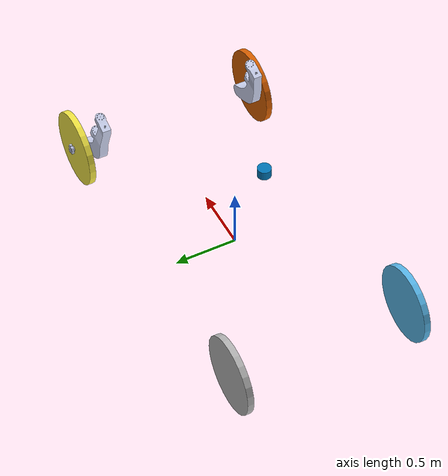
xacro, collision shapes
<?xml version="1.0"?>
<robot xmlns:xacro="http://www.ros.org/wiki/xacro" name="asc">
  <gazebo>
    <plugin name="gazebo_ros_control" filename="libgazebo_ros_control.so">
      <robotNamespace>/</robotNamespace>
      <robotSimType>gazebo_ros_control/DefaultRobotHWSim</robotSimType>
      <legacyModeNS>false</legacyModeNS>
    </plugin>
  </gazebo>
  <link name="base_link"/>
  <joint name="base_link_to_frame" type="fixed">
    <origin xyz="0 0 0.7" rpy="0 0 0"/>
    <parent link="base_link"/>
    <child link="frame_link"/>
  </joint>
  <link name="frame_link">
    <inertial>
      <origin xyz="-0.191135074026536 0.00147037627768998 -0.144166350352701" rpy="0 0 0"/>
      <mass value="54.6845003989778"/>
      <inertia ixx="0.830289508168532" ixy="-7.44170925374484E-07" ixz="-0.168031775231281" iyy="1.89493024064907" iyz="3.6787232173372E-07" izz="1.80540947379668"/>
    </inertial>
    <visual>
      <origin xyz="0 0 0" rpy="0 0 0"/>
      <geometry>
        <mesh filename="package://asc_description/meshes/base_link.STL"/>
      </geometry>
      <material name="">
        <color rgba="0.866666666666667 0.866666666666667 0.890196078431372 1"/>
      </material>
    </visual>
  </link>
  <link name="left_front_steering_link">
    <inertial>
      <origin xyz="-0.0439194980427094 -0.0123148656628935 -0.29574701698731" rpy="0 0 0"/>
      <mass value="5.71439015182903"/>
      <inertia ixx="0.138973038944984" ixy="0.00240438901312515" ixz="0.0320681563279578" iyy="0.160053837434921" iyz="-0.0109556260035955" izz="0.028546837728721"/>
    </inertial>
    <visual>
      <origin xyz="0 0 0" rpy="0 0 0"/>
      <geometry>
        <mesh filename="package://asc_description/meshes/left_front_steering_link.STL"/>
      </geometry>
      <material name="">
        <color rgba="0.792156862745098 0.819607843137255 0.933333333333333 1"/>
      </material>
    </visual>
    <collision>
      <origin xyz="0 0 0" rpy="0 0 0"/>
      <geometry>
        <mesh filename="package://asc_description/meshes/left_front_steering_link.STL"/>
      </geometry>
    </collision>
  </link>
  <joint name="left_front_steering_joint" type="revolute">
    <origin xyz="0.9825 0.63618 0.047063" rpy="0.13546 -0.28749 0.0037802"/>
    <parent link="frame_link"/>
    <child link="left_front_steering_link"/>
    <axis xyz="0 0 1"/>
    <limit lower="-0.8" upper="0.9" effort="100" velocity="100"/>
  </joint>
  <link name="left_front_wheel_link">
    <inertial>
      <origin xyz="-2.26485497023532E-14 4.10782519111308E-14 0.00509989314954018" rpy="0 0 0"/>
      <mass value="3.6905479088754"/>
      <inertia ixx="0.117114266308146" ixy="-6.93889390390723E-18" ixz="1.02756637900478E-17" iyy="0.117114266308146" iyz="-3.62378420062206E-17" izz="0.227951064044091"/>
    </inertial>
    <visual>
      <origin xyz="0 0 0" rpy="0 0 0"/>
      <geometry>
        <cylinder length="0.05" radius="0.3"/>
      </geometry>
    </visual>
    <collision>
      <origin xyz="0 0 0" rpy="0 0 0"/>
      <geometry>
        <cylinder length="0.05" radius="0.3"/>
      </geometry>
    </collision>
  </link>
  <joint name="left_front_wheel_joint" type="continuous">
    <origin xyz="0.065693 0.065054 -0.50813" rpy="-1.8471 1.0585 -0.24589"/>
    <parent link="left_front_steering_link"/>
    <child link="left_front_wheel_link"/>
    <axis xyz="0 0 1"/>
  </joint>
  <link name="right_front_steering_link">
    <inertial>
      <origin xyz="-0.0465182122250822 0.0145095544427134 -0.290619703564971" rpy="0 0 0"/>
      <mass value="5.57746367002881"/>
      <inertia ixx="0.138857493635095" ixy="-0.0022557465179349" ixz="0.032139397456901" iyy="0.160001336296301" iyz="0.0107272499121531" izz="0.0284811002523076"/>
    </inertial>
    <visual>
      <origin xyz="0 0 0" rpy="0 0 0"/>
      <geometry>
        <mesh filename="package://asc_description/meshes/right_front_steering_link.STL"/>
      </geometry>
      <material name="">
        <color rgba="0.792156862745098 0.819607843137255 0.933333333333333 1"/>
      </material>
    </visual>
    <collision>
      <origin xyz="0 0 0" rpy="0 0 0"/>
      <geometry>
        <mesh filename="package://asc_description/meshes/right_front_steering_link.STL"/>
      </geometry>
    </collision>
  </link>
  <joint name="right_front_steering_joint" type="revolute">
    <origin xyz="0.9825 -0.63318 0.047063" rpy="-0.13546 -0.28749 0.0037802"/>
    <parent link="frame_link"/>
    <child link="right_front_steering_link"/>
    <axis xyz="0 0 1"/>
    <limit lower="-0.8" upper="0.8" effort="100" velocity="100"/>
  </joint>
  <link name="right_front_wheel_link">
    <inertial>
      <origin xyz="-1.02140518265514E-14 6.85007606193722E-14 0.00509989314946457" rpy="0 0 0"/>
      <mass value="3.69054790887537"/>
      <inertia ixx="0.117114266308143" ixy="1.38777878078145E-17" ixz="2.37549730750149E-18" iyy="0.117114266308143" iyz="3.40770700491441E-17" izz="0.22795106404409"/>
    </inertial>
    <visual>
      <origin xyz="0 0 0" rpy="0 0 0"/>
      <geometry>
        <cylinder length="0.05" radius="0.3"/>
      </geometry>
    </visual>
    <collision>
      <origin xyz="0 0 0" rpy="0 0 0"/>
      <geometry>
        <cylinder length="0.05" radius="0.3"/>
      </geometry>
    </collision>
  </link>
  <joint name="right_front_wheel_joint" type="continuous">
    <origin xyz="0.065291 -0.059582 -0.50741" rpy="1.8455 1.0552 0.23683"/>
    <parent link="right_front_steering_link"/>
    <child link="right_front_wheel_link"/>
    <axis xyz="0 0 1"/>
  </joint>
  <!-- add fake rear steering joint-->
  <link name="left_rear_steer">
    <inertial>
      <origin xyz="0 0 0" rpy="0 0 0"/>
      <mass value="1"/>
      <inertia ixx="1.0" ixy="0.0" ixz="0.0" iyy="1.0" iyz="0.0" izz="1.0"/>
    </inertial>
  </link>
  <joint name="left_rear_steering_joint" type="revolute">
    <origin xyz="-1.3237 0.70906 -0.41261" rpy="0 0 0"/>
    <parent link="frame_link"/>
    <child link="left_rear_steer"/>
    <axis xyz="0 0 1"/>
    <limit lower="0" upper="0" effort="0" velocity="0"/>
  </joint>
  <link name="left_rear_wheel">
    <inertial>
      <origin xyz="8.43769498715119E-15 0.0589722640664191 -5.01820807130571E-14" rpy="0 0 0"/>
      <mass value="3.68939811577995"/>
      <inertia ixx="0.117113236563891" ixy="-4.42261767048626E-17" ixz="-6.93889390390723E-18" iyy="0.227950884881602" iyz="-3.11187820789416E-16" izz="0.117113236563891"/>
    </inertial>
    <visual>
      <origin xyz="0 0 0" rpy="1.57 0 0"/>
      <geometry>
        <cylinder length="0.05" radius="0.3"/>
      </geometry>
    </visual>
    <collision>
      <origin xyz="0 0 0" rpy="1.57 0 0"/>
      <geometry>
        <cylinder length="0.05" radius="0.3"/>
      </geometry>
    </collision>
  </link>
  <joint name="left_rear_wheel_joint" type="continuous">
    <origin xyz="0 0 0" rpy="0 0 0"/>
    <parent link="left_rear_steer"/>
    <child link="left_rear_wheel"/>
    <axis xyz="0 1 0"/>
  </joint>
  <!-- add fake rear steering joint-->
  <link name="right_rear_steer">
    <inertial>
      <origin xyz="0 0 0" rpy="0 0 0"/>
      <mass value="1"/>
      <inertia ixx="1.0" ixy="0.0" ixz="0.0" iyy="1.0" iyz="0.0" izz="1.0"/>
    </inertial>
  </link>
  <joint name="right_rear_steering_joint" type="revolute">
    <origin xyz="-1.3237 -0.70606 -0.41261" rpy="0 0 0"/>
    <parent link="frame_link"/>
    <child link="right_rear_steer"/>
    <axis xyz="0 0 1"/>
    <limit lower="0" upper="0" effort="0" velocity="0"/>
  </joint>
  <link name="right_rear_wheel">
    <inertial>
      <origin xyz="7.99360577730113E-15 0.0589722640664192 4.2410519540681E-14" rpy="0 0 0"/>
      <mass value="3.68939811577991"/>
      <inertia ixx="0.117113236563893" ixy="-4.66966016159301E-17" ixz="4.33680868994202E-18" iyy="0.2279508848816" iyz="3.34438350256477E-16" izz="0.117113236563893"/>
    </inertial>
    <visual>
      <origin xyz="0 0 0" rpy="1.57 0 0"/>
      <geometry>
        <cylinder length="0.05" radius="0.3"/>
      </geometry>
    </visual>
    <collision>
      <origin xyz="0 0 0" rpy="1.57 0 0"/>
      <geometry>
        <cylinder length="0.05" radius="0.3"/>
      </geometry>
    </collision>
  </link>
  <joint name="right_rear_wheel_joint" type="continuous">
    <origin xyz="0 0 0" rpy="0 0 0"/>
    <parent link="right_rear_steer"/>
    <child link="right_rear_wheel"/>
    <axis xyz="0 1 0"/>
  </joint>
  <transmission name="tran1">
    <type>transmission_interface/SimpleTransmission</type>
    <joint name="left_rear_wheel_joint">
      <hardwareInterface>hardware_interface/VelocityJointInterface</hardwareInterface>
    </joint>
    <actuator name="motor1">
      <hardwareInterface>hardware_interface/VelocityJointInterface</hardwareInterface>
      <mechanicalReduction>1</mechanicalReduction>
    </actuator>
  </transmission>
  <transmission name="tran2">
    <type>transmission_interface/SimpleTransmission</type>
    <joint name="right_rear_wheel_joint">
      <hardwareInterface>hardware_interface/VelocityJointInterface</hardwareInterface>
    </joint>
    <actuator name="motor2">
      <hardwareInterface>hardware_interface/VelocityJointInterface</hardwareInterface>
      <mechanicalReduction>1</mechanicalReduction>
    </actuator>
  </transmission>
  <!-- Transmissions for steering joints-->
  <transmission name="tran3">
    <type>transmission_interface/SimpleTransmission</type>
    <joint name="left_front_steering_joint">
      <hardwareInterface>hardware_interface/PositionJointInterface</hardwareInterface>
    </joint>
    <actuator name="motor3">
      <hardwareInterface>hardware_interface/PositionJointInterface</hardwareInterface>
      <mechanicalReduction>1</mechanicalReduction>
    </actuator>
  </transmission>
  <transmission name="tran4">
    <type>transmission_interface/SimpleTransmission</type>
    <joint name="right_front_steering_joint">
      <hardwareInterface>hardware_interface/PositionJointInterface</hardwareInterface>
    </joint>
    <actuator name="motor4">
      <hardwareInterface>hardware_interface/PositionJointInterface</hardwareInterface>
      <mechanicalReduction>1</mechanicalReduction>
    </actuator>
  </transmission>
  <!-- Transmissions for fake steering joints-->
  <transmission name="tran5">
    <type>transmission_interface/SimpleTransmission</type>
    <joint name="left_rear_steering_joint">
      <hardwareInterface>hardware_interface/PositionJointInterface</hardwareInterface>
    </joint>
    <actuator name="motor5">
      <hardwareInterface>hardware_interface/PositionJointInterface</hardwareInterface>
      <mechanicalReduction>1</mechanicalReduction>
    </actuator>
  </transmission>
  <transmission name="tran6">
    <type>transmission_interface/SimpleTransmission</type>
    <joint name="right_rear_steering_joint">
      <hardwareInterface>hardware_interface/PositionJointInterface</hardwareInterface>
    </joint>
    <actuator name="motor6">
      <hardwareInterface>hardware_interface/PositionJointInterface</hardwareInterface>
      <mechanicalReduction>1</mechanicalReduction>
    </actuator>
  </transmission>
  <transmission name="tran7">
    <type>transmission_interface/SimpleTransmission</type>
    <joint name="left_front_wheel_joint">
      <hardwareInterface>hardware_interface/VelocityJointInterface</hardwareInterface>
    </joint>
    <actuator name="motor7">
      <hardwareInterface>hardware_interface/VelocityJointInterface</hardwareInterface>
      <mechanicalReduction>1</mechanicalReduction>
    </actuator>
  </transmission>
  <transmission name="tran8">
    <type>transmission_interface/SimpleTransmission</type>
    <joint name="right_front_wheel_joint">
      <hardwareInterface>hardware_interface/VelocityJointInterface</hardwareInterface>
    </joint>
    <actuator name="motor8">
      <hardwareInterface>hardware_interface/VelocityJointInterface</hardwareInterface>
      <mechanicalReduction>1</mechanicalReduction>
    </actuator>
  </transmission>
  <!-- Sensors -->
  <gazebo>
    <plugin name="imu_controller" filename="libhector_gazebo_ros_imu.so">
      <robotNamespace>/</robotNamespace>
      <updateRate>50.0</updateRate>
      <bodyName>base_link</bodyName>
      <topicName>imu/data</topicName>
      <accelDrift>0.005 0.005 0.005</accelDrift>
      <accelGaussianNoise>0.005 0.005 0.005</accelGaussianNoise>
      <rateDrift>0.005 0.005 0.005 </rateDrift>
      <rateGaussianNoise>0.005 0.005 0.005 </rateGaussianNoise>
      <headingDrift>0.005</headingDrift>
      <headingGaussianNoise>0.005</headingGaussianNoise>
    </plugin>
    <!-- for calculating perfect odometry -->
    <!-- add gps -->
    <plugin name="gps_controller" filename="libhector_gazebo_ros_gps.so">
      <robotNamespace>/</robotNamespace>
      <updateRate>40</updateRate>
      <bodyName>base_link</bodyName>
      <frameId>base_link</frameId>
      <topicName>navsat/fix</topicName>
      <velocityTopicName>navsat/vel</velocityTopicName>
      <drift>0.0001 0.0001 0.0001</drift>
    </plugin>
  </gazebo>

  <!-- add camera -->
  <gazebo reference="camera_link">
    <sensor type="depth" name="openni_camera_camera">
      <always_on>1</always_on>
      <visualize>true</visualize>
      <camera>
        <horizontal_fov>1.3962634</horizontal_fov>
        <image>
          <width>640</width>
          <height>480</height>
          <format>R8G8B8</format>
        </image>
        <clip>
          <near>0.1</near>
          <far>25.0</far>
        </clip>
      </camera>
      <plugin name="camera_plugin" filename="libgazebo_ros_openni_kinect.so">
        <baseline>0.2</baseline>
        <alwaysOn>true</alwaysOn>
        <updateRate>0.0</updateRate>
        <cameraName>camera_ir</cameraName>
        <imageTopicName>/zed/zed_node/rgb/image_rect_color</imageTopicName>
        <cameraInfoTopicName>/zed/zed_node/rgb/camera_info </cameraInfoTopicName>
        <depthImageTopicName>/zed/zed_node/depth/depth_registered</depthImageTopicName>
        <depthImageCameraInfoTopicName>/zed/zed_node/depth/image_raw/camera_info</depthImageCameraInfoTopicName>
        <pointCloudTopicName>/zed/zed_node/point_cloud/cloud_registered </pointCloudTopicName>
        <frameName>camera_link_pc</frameName>
        <pointCloudCutoff>0.4</pointCloudCutoff>
        <distortionK1>0</distortionK1>
        <distortionK2>0</distortionK2>
        <distortionK3>0</distortionK3>
        <distortionT1>0</distortionT1>
        <distortionT2>0</distortionT2>
        <CxPrime>0</CxPrime>
        <Cx>0</Cx>
        <Cy>0</Cy>
        <focalLength>0</focalLength>
        <hackBaseline>0</hackBaseline>
      </plugin>
    </sensor>
  </gazebo>
  <link name="camera_link"/>

  <joint name="base_to_camera" type="fixed">
    <origin xyz="1.2 0 0.6" rpy="0 0.1 0"/>
    <parent link="base_link"/>
    <child link="camera_link"/>
  </joint>
  <link name="camera_link_pc"/>
  <joint name="camera_to_pc" type="fixed">
    <origin xyz="0 0 0" rpy="-1.57 0 -1.57"/>
    <parent link="camera_link"/>
    <child link="camera_link_pc"/>
  </joint>
  <xacro:include filename="$(find velodyne_description)/urdf/VLP-16.urdf.xacro"/>
  <VLP-16 parent="base_link" name="velodyne" topic="/os1_cloud_node/points" hz="10" samples="440" gpu="false">
    <origin xyz="-0.45 0 1.15" rpy="0 0 0"/>
  </VLP-16>
</robot>

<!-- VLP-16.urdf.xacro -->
<robot xmlns:xacro="http://www.ros.org/wiki/xacro" name="VLP-16">
  <xacro:property name="M_PI" value="3.1415926535897931" />
  <xacro:macro name="VLP-16" params="*origin is_sim:=true parent:=base_link name:=velodyne tf_prefix:='' topic:=/velodyne_points organize_cloud:=false hz:=10 lasers:=16 samples:=1875 collision_range:=0.3 min_range:=0.0 max_range:=100.0 noise:=0.008 min_angle:=-${M_PI} max_angle:=${M_PI} gpu:=false">

    <joint name="${name}_base_mount_joint" type="fixed">
      <xacro:insert_block name="origin" />
      <parent link="${parent}"/>
      <child link="${name}_base_link"/>
    </joint>

    <link name="${name}_base_link">
      <inertial>
        <mass value="0.83"/>
        <origin xyz="0 0 0.03585"/>
        <inertia ixx="${(0.83 * (3.0*0.0516*0.0516 + 0.0717*0.0717)) / 12.0}" ixy="0" ixz="0"
          iyy="${(0.83 * (3.0*0.0516*0.0516 + 0.0717*0.0717)) / 12.0}" iyz="0"
          izz="${0.5 * 0.83 * (0.0516*0.0516)}"/>
      </inertial>
      <visual>
        <geometry>
          <mesh filename="package://velodyne_description/meshes/VLP16_base_1.dae" />
        </geometry>
      </visual>
      <visual>
        <geometry>
          <mesh filename="package://velodyne_description/meshes/VLP16_base_2.dae" />
        </geometry>
      </visual>
      <collision>
        <origin rpy="0 0 0" xyz="0 0 0.03585"/>
        <geometry>
          <cylinder radius="0.0516" length="0.0717"/>
        </geometry>
      </collision>
    </link>

    <joint name="${name}_base_scan_joint" type="fixed" >
      <origin xyz="0 0 0.0377" rpy="0 0 0" />
      <parent link="${name}_base_link" />
      <child link="${name}"/>
    </joint>

    <link name="${name}">
      <inertial>
        <mass value="0.01"/>
        <origin xyz="0 0 0"/>
        <inertia ixx="1e-7" ixy="0" ixz="0" iyy="1e-7" iyz="0" izz="1e-7"/>
      </inertial>
      <visual>
        <origin xyz="0 0 -0.0377" />
        <geometry>
          <mesh filename="package://velodyne_description/meshes/VLP16_scan.dae" />
        </geometry>
      </visual>
      <collision>
        <geometry>
          <sphere radius="0"/>
        </geometry>
      </collision>
    </link>

    <!-- Gazebo requires the velodyne_gazebo_plugins package -->
    <xacro:if value="${is_sim}">
        <gazebo reference="${name}">
            <xacro:if value="${gpu}">
                <sensor type="gpu_ray" name="${name}-VLP16">
                <pose>0 0 0 0 0 0</pose>
                <visualize>false</visualize>
                <update_rate>${hz}</update_rate>
                <ray>
                    <scan>
                    <horizontal>
                        <samples>${samples}</samples>
                        <resolution>1</resolution>
                        <min_angle>${min_angle}</min_angle>
                        <max_angle>${max_angle}</max_angle>
                    </horizontal>
                    <vertical>
                        <samples>${lasers}</samples>
                        <resolution>1</resolution>
                        <min_angle>-${15.0*M_PI/180.0}</min_angle>
                        <max_angle> ${15.0*M_PI/180.0}</max_angle>
                    </vertical>
                    </scan>
                    <range>
                    <min>${collision_range}</min>
                    <max>${max_range+1}</max>
                    <resolution>0.001</resolution>
                    </range>
                    <noise>
                    <type>gaussian</type>
                    <mean>0.0</mean>
                    <stddev>0.0</stddev>
                    </noise>
                </ray>
                <plugin name="gazebo_ros_laser_controller" filename="libgazebo_ros_velodyne_laser.so">
                    <ros>
                    <namespace>/${name}</namespace>
                    <remapping>~/out:=${topic}</remapping>
                    </ros>
                    <tf_prefix>${tf_prefix}</tf_prefix>
                    <frame_name>${name}</frame_name>
                    <organize_cloud>${organize_cloud}</organize_cloud>
                    <min_range>${min_range}</min_range>
                    <max_range>${max_range}</max_range>
                    <gaussian_noise>${noise}</gaussian_noise>
                </plugin>
                </sensor>
            </xacro:if>
            <xacro:unless value="${gpu}">
                <sensor type="ray" name="${name}-VLP16">
                <pose>0 0 0 0 0 0</pose>
                <visualize>false</visualize>
                <update_rate>${hz}</update_rate>
                <ray>
                    <scan>
                    <horizontal>
                        <samples>${samples}</samples>
                        <resolution>1</resolution>
                        <min_angle>${min_angle}</min_angle>
                        <max_angle>${max_angle}</max_angle>
                    </horizontal>
                    <vertical>
                        <samples>${lasers}</samples>
                        <resolution>1</resolution>
                        <min_angle>-${15.0*M_PI/180.0}</min_angle>
                        <max_angle> ${15.0*M_PI/180.0}</max_angle>
                    </vertical>
                    </scan>
                    <range>
                    <min>${collision_range}</min>
                    <max>${max_range+1}</max>
                    <resolution>0.001</resolution>
                    </range>
                    <noise>
                    <type>gaussian</type>
                    <mean>0.0</mean>
                    <stddev>0.0</stddev>
                    </noise>
                </ray>
                <plugin name="gazebo_ros_laser_controller" filename="libgazebo_ros_velodyne_laser.so">
                    <ros>
                    <namespace>/${name}</namespace>
                    <remapping>~/out:=${topic}</remapping>
                    </ros>
                    <tf_prefix>${tf_prefix}</tf_prefix>
                    <frame_name>${name}</frame_name>
                    <organize_cloud>${organize_cloud}</organize_cloud>
                    <min_range>${min_range}</min_range>
                    <max_range>${max_range}</max_range>
                    <gaussian_noise>${noise}</gaussian_noise>
                </plugin>
                </sensor>
            </xacro:unless>
        </gazebo>
    </xacro:if>

  </xacro:macro>
</robot>
